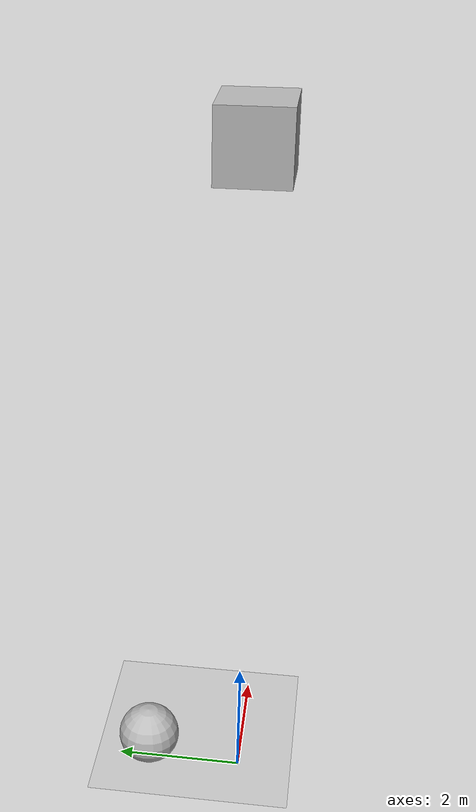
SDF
<?xml version="1.0" ?>
<sdf version="1.5">
  <world name="default">
    <include>
      <uri>model://ground_plane</uri>
    </include>
    <include>
      <uri>model://sun</uri>
    </include>
    <audio>
      <device>default</device>
    </audio>
    <model name="box">
      <pose>0 0 10.5 0 0 0</pose>
      <link name="link">
        <collision name="collision">
          <geometry>
            <box>
              <size>1 1 1</size>
            </box>
          </geometry>
        </collision>
        <visual name="visual">
          <geometry>
            <box>
              <size>1 1 1</size>
            </box>
          </geometry>
          <material>
            <script>Gazebo/WoodPallet</script>
          </material>
        </visual>
        <audio_source>
          <uri>file://media/audio/cheer.mp3</uri>
          <pitch>2.0</pitch>
          <gain>1.0</gain>
          <loop>false</loop>
          <contact>
            <collision>collision</collision>
          </contact>
        </audio_source>
      </link>
    </model>
    <model name="sphere">
      <pose>0 1.5 0.5 0 0 0</pose>
      <link name="link">
        <audio_sink />
        <collision name="collision">
          <geometry>
            <sphere>
              <radius>0.5</radius>
            </sphere>
          </geometry>
        </collision>
        <visual name="visual">
          <geometry>
            <sphere>
              <radius>0.5</radius>
            </sphere>
          </geometry>
          <material>
            <script>Gazebo/WoodPallet</script>
          </material>
        </visual>
      </link>
    </model>
  </world>
</sdf>
